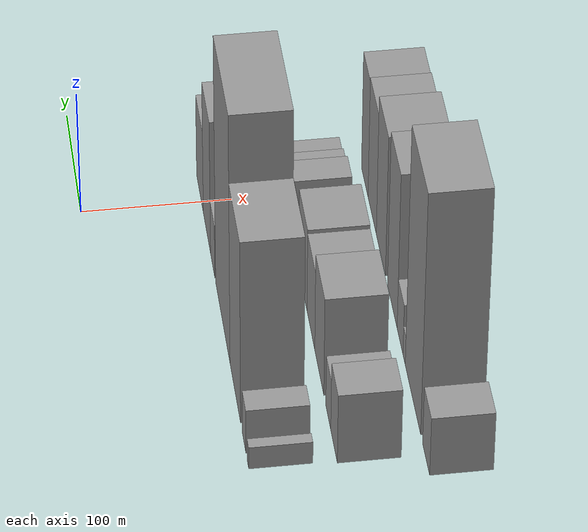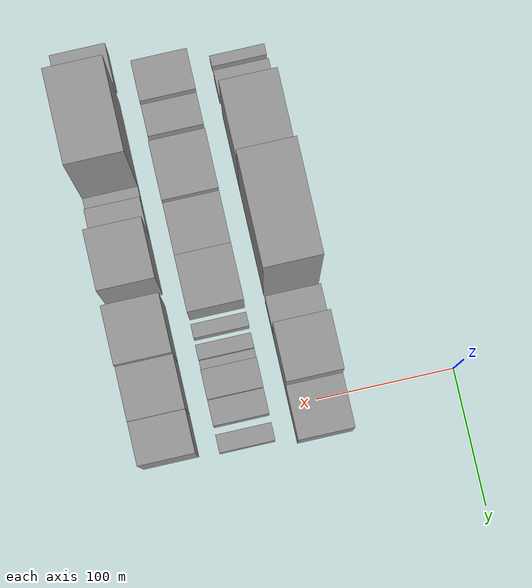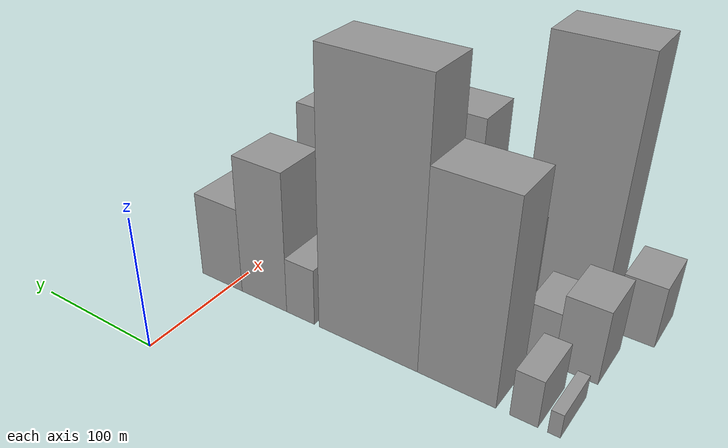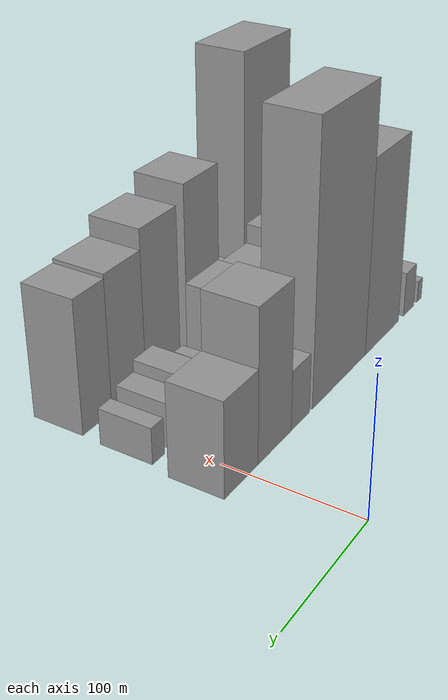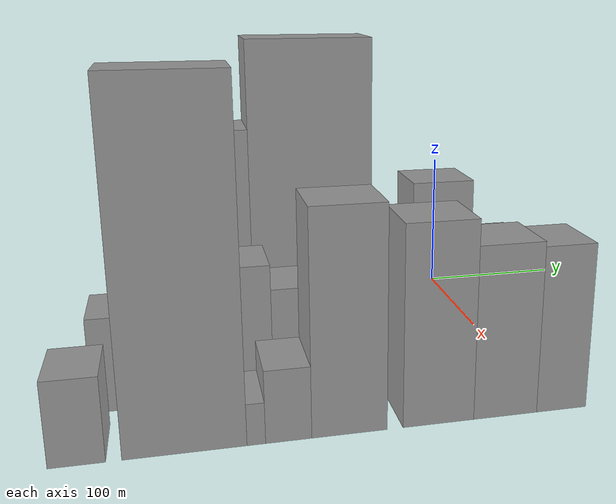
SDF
<sdf version="1.6">
 <world name="default">
  <model name="building_10">
   <static>1</static>
   <pose>100.0000 -250.5992 0 0.000000 0.000000 0.000000</pose>
   <link name="link">
    <pose>0 0 9.00 0 0 0</pose>
    <collision name="collision"><geometry><box><size>40.0000 8.0627 18.0000</size></box></geometry></collision>
    <visual name="visual">
     <cast_shadows>0</cast_shadows>
     <geometry><box><size>40.0000 8.0627 18.0000</size></box></geometry>
     <material>
      <script>
       <uri>model://grey_wall/materials/scripts</uri>
       <uri>model://grey_wall/materials/textures</uri>
       <name>vrc/grey_wall</name>
      </script>
     </material>
    </visual>
   </link>
  </model>
  <model name="building_11">
   <static>1</static>
   <pose>100.0000 -231.4067 0 0.000000 0.000000 0.000000</pose>
   <link name="link">
    <pose>0 0 18.00 0 0 0</pose>
    <collision name="collision"><geometry><box><size>40.0000 18.3222 36.0000</size></box></geometry></collision>
    <visual name="visual">
     <cast_shadows>0</cast_shadows>
     <geometry><box><size>40.0000 18.3222 36.0000</size></box></geometry>
     <material>
      <script>
       <uri>model://grey_wall/materials/scripts</uri>
       <uri>model://grey_wall/materials/textures</uri>
       <name>vrc/grey_wall</name>
      </script>
     </material>
    </visual>
   </link>
  </model>
  <model name="building_12">
   <static>1</static>
   <pose>100.0000 -185.6500 0 0.000000 0.000000 0.000000</pose>
   <link name="link">
    <pose>0 0 75.00 0 0 0</pose>
    <collision name="collision"><geometry><box><size>40.0000 55.1913 150.0000</size></box></geometry></collision>
    <visual name="visual">
     <cast_shadows>0</cast_shadows>
     <geometry><box><size>40.0000 55.1913 150.0000</size></box></geometry>
     <material>
      <script>
       <uri>model://grey_wall/materials/scripts</uri>
       <uri>model://grey_wall/materials/textures</uri>
       <name>vrc/grey_wall</name>
      </script>
     </material>
    </visual>
   </link>
  </model>
  <model name="building_13">
   <static>1</static>
   <pose>100.0000 -119.1153 0 0.000000 0.000000 0.000000</pose>
   <link name="link">
    <pose>0 0 102.00 0 0 0</pose>
    <collision name="collision"><geometry><box><size>40.0000 77.8781 204.0000</size></box></geometry></collision>
    <visual name="visual">
     <cast_shadows>0</cast_shadows>
     <geometry><box><size>40.0000 77.8781 204.0000</size></box></geometry>
     <material>
      <script>
       <uri>model://grey_wall/materials/scripts</uri>
       <uri>model://grey_wall/materials/textures</uri>
       <name>vrc/grey_wall</name>
      </script>
     </material>
    </visual>
   </link>
  </model>
  <model name="building_14">
   <static>1</static>
   <pose>100.0000 -64.1323 0 0.000000 0.000000 0.000000</pose>
   <link name="link">
    <pose>0 0 22.50 0 0 0</pose>
    <collision name="collision"><geometry><box><size>40.0000 24.0878 45.0000</size></box></geometry></collision>
    <visual name="visual">
     <cast_shadows>0</cast_shadows>
     <geometry><box><size>40.0000 24.0878 45.0000</size></box></geometry>
     <material>
      <script>
       <uri>model://grey_wall/materials/scripts</uri>
       <uri>model://grey_wall/materials/textures</uri>
       <name>vrc/grey_wall</name>
      </script>
     </material>
    </visual>
   </link>
  </model>
  <model name="building_15">
   <static>1</static>
   <pose>100.0000 -31.6384 0 0.000000 0.000000 0.000000</pose>
   <link name="link">
    <pose>0 0 55.50 0 0 0</pose>
    <collision name="collision"><geometry><box><size>40.0000 40.9000 111.0000</size></box></geometry></collision>
    <visual name="visual">
     <cast_shadows>0</cast_shadows>
     <geometry><box><size>40.0000 40.9000 111.0000</size></box></geometry>
     <material>
      <script>
       <uri>model://grey_wall/materials/scripts</uri>
       <uri>model://grey_wall/materials/textures</uri>
       <name>vrc/grey_wall</name>
      </script>
     </material>
    </visual>
   </link>
  </model>
  <model name="building_16">
   <static>1</static>
   <pose>100.0000 8.0737 0 0.000000 0.000000 0.000000</pose>
   <link name="link">
    <pose>0 0 34.50 0 0 0</pose>
    <collision name="collision"><geometry><box><size>40.0000 38.5243 69.0000</size></box></geometry></collision>
    <visual name="visual">
     <cast_shadows>0</cast_shadows>
     <geometry><box><size>40.0000 38.5243 69.0000</size></box></geometry>
     <material>
      <script>
       <uri>model://grey_wall/materials/scripts</uri>
       <uri>model://grey_wall/materials/textures</uri>
       <name>vrc/grey_wall</name>
      </script>
     </material>
    </visual>
   </link>
  </model>
  <model name="building_43">
   <static>1</static>
   <pose>155.0000 -241.7620 0 0.000000 0.000000 0.000000</pose>
   <link name="link">
    <pose>0 0 28.50 0 0 0</pose>
    <collision name="collision"><geometry><box><size>40.0000 29.3291 57.0000</size></box></geometry></collision>
    <visual name="visual">
     <cast_shadows>0</cast_shadows>
     <geometry><box><size>40.0000 29.3291 57.0000</size></box></geometry>
     <material>
      <script>
       <uri>model://grey_wall/materials/scripts</uri>
       <uri>model://grey_wall/materials/textures</uri>
       <name>vrc/grey_wall</name>
      </script>
     </material>
    </visual>
   </link>
  </model>
  <model name="building_44">
   <static>1</static>
   <pose>155.0000 -215.5495 0 0.000000 0.000000 0.000000</pose>
   <link name="link">
    <pose>0 0 21.00 0 0 0</pose>
    <collision name="collision"><geometry><box><size>40.0000 23.0959 42.0000</size></box></geometry></collision>
    <visual name="visual">
     <cast_shadows>0</cast_shadows>
     <geometry><box><size>40.0000 23.0959 42.0000</size></box></geometry>
     <material>
      <script>
       <uri>model://grey_wall/materials/scripts</uri>
       <uri>model://grey_wall/materials/textures</uri>
       <name>vrc/grey_wall</name>
      </script>
     </material>
    </visual>
   </link>
  </model>
  <model name="building_45">
   <static>1</static>
   <pose>155.0000 -173.9169 0 0.000000 0.000000 0.000000</pose>
   <link name="link">
    <pose>0 0 40.50 0 0 0</pose>
    <collision name="collision"><geometry><box><size>40.0000 42.1693 81.0000</size></box></geometry></collision>
    <visual name="visual">
     <cast_shadows>0</cast_shadows>
     <geometry><box><size>40.0000 42.1693 81.0000</size></box></geometry>
     <material>
      <script>
       <uri>model://grey_wall/materials/scripts</uri>
       <uri>model://grey_wall/materials/textures</uri>
       <name>vrc/grey_wall</name>
      </script>
     </material>
    </visual>
   </link>
  </model>
  <model name="building_46">
   <static>1</static>
   <pose>155.0000 -134.1837 0 0.000000 0.000000 0.000000</pose>
   <link name="link">
    <pose>0 0 33.00 0 0 0</pose>
    <collision name="collision"><geometry><box><size>40.0000 37.2972 66.0000</size></box></geometry></collision>
    <visual name="visual">
     <cast_shadows>0</cast_shadows>
     <geometry><box><size>40.0000 37.2972 66.0000</size></box></geometry>
     <material>
      <script>
       <uri>model://grey_wall/materials/scripts</uri>
       <uri>model://grey_wall/materials/textures</uri>
       <name>vrc/grey_wall</name>
      </script>
     </material>
    </visual>
   </link>
  </model>
  <model name="building_47">
   <static>1</static>
   <pose>155.0000 -95.3293 0 0.000000 0.000000 0.000000</pose>
   <link name="link">
    <pose>0 0 34.50 0 0 0</pose>
    <collision name="collision"><geometry><box><size>40.0000 40.4116 69.0000</size></box></geometry></collision>
    <visual name="visual">
     <cast_shadows>0</cast_shadows>
     <geometry><box><size>40.0000 40.4116 69.0000</size></box></geometry>
     <material>
      <script>
       <uri>model://grey_wall/materials/scripts</uri>
       <uri>model://grey_wall/materials/textures</uri>
       <name>vrc/grey_wall</name>
      </script>
     </material>
    </visual>
   </link>
  </model>
  <model name="building_48">
   <static>1</static>
   <pose>155.0000 -65.0605 0 0.000000 0.000000 0.000000</pose>
   <link name="link">
    <pose>0 0 12.00 0 0 0</pose>
    <collision name="collision"><geometry><box><size>40.0000 10.1261 24.0000</size></box></geometry></collision>
    <visual name="visual">
     <cast_shadows>0</cast_shadows>
     <geometry><box><size>40.0000 10.1261 24.0000</size></box></geometry>
     <material>
      <script>
       <uri>model://grey_wall/materials/scripts</uri>
       <uri>model://grey_wall/materials/textures</uri>
       <name>vrc/grey_wall</name>
      </script>
     </material>
    </visual>
   </link>
  </model>
  <model name="building_49">
   <static>1</static>
   <pose>155.0000 -49.5708 0 0.000000 0.000000 0.000000</pose>
   <link name="link">
    <pose>0 0 13.50 0 0 0</pose>
    <collision name="collision"><geometry><box><size>40.0000 10.8533 27.0000</size></box></geometry></collision>
    <visual name="visual">
     <cast_shadows>0</cast_shadows>
     <geometry><box><size>40.0000 10.8533 27.0000</size></box></geometry>
     <material>
      <script>
       <uri>model://grey_wall/materials/scripts</uri>
       <uri>model://grey_wall/materials/textures</uri>
       <name>vrc/grey_wall</name>
      </script>
     </material>
    </visual>
   </link>
  </model>
  <model name="building_50">
   <static>1</static>
   <pose>155.0000 -40.2125 0 0.000000 0.000000 0.000000</pose>
   <link name="link">
    <pose>0 0 9.00 0 0 0</pose>
    <collision name="collision"><geometry><box><size>40.0000 7.8632 18.0000</size></box></geometry></collision>
    <visual name="visual">
     <cast_shadows>0</cast_shadows>
     <geometry><box><size>40.0000 7.8632 18.0000</size></box></geometry>
     <material>
      <script>
       <uri>model://grey_wall/materials/scripts</uri>
       <uri>model://grey_wall/materials/textures</uri>
       <name>vrc/grey_wall</name>
      </script>
     </material>
    </visual>
   </link>
  </model>
  <model name="building_51">
   <static>1</static>
   <pose>155.0000 -25.5959 0 0.000000 0.000000 0.000000</pose>
   <link name="link">
    <pose>0 0 21.00 0 0 0</pose>
    <collision name="collision"><geometry><box><size>40.0000 21.3701 42.0000</size></box></geometry></collision>
    <visual name="visual">
     <cast_shadows>0</cast_shadows>
     <geometry><box><size>40.0000 21.3701 42.0000</size></box></geometry>
     <material>
      <script>
       <uri>model://grey_wall/materials/scripts</uri>
       <uri>model://grey_wall/materials/textures</uri>
       <name>vrc/grey_wall</name>
      </script>
     </material>
    </visual>
   </link>
  </model>
  <model name="building_52">
   <static>1</static>
   <pose>155.0000 -5.6852 0 0.000000 0.000000 0.000000</pose>
   <link name="link">
    <pose>0 0 16.50 0 0 0</pose>
    <collision name="collision"><geometry><box><size>40.0000 18.4512 33.0000</size></box></geometry></collision>
    <visual name="visual">
     <cast_shadows>0</cast_shadows>
     <geometry><box><size>40.0000 18.4512 33.0000</size></box></geometry>
     <material>
      <script>
       <uri>model://grey_wall/materials/scripts</uri>
       <uri>model://grey_wall/materials/textures</uri>
       <name>vrc/grey_wall</name>
      </script>
     </material>
    </visual>
   </link>
  </model>
  <model name="building_53">
   <static>1</static>
   <pose>155.0000 16.0391 0 0.000000 0.000000 0.000000</pose>
   <link name="link">
    <pose>0 0 13.50 0 0 0</pose>
    <collision name="collision"><geometry><box><size>40.0000 12.9974 27.0000</size></box></geometry></collision>
    <visual name="visual">
     <cast_shadows>0</cast_shadows>
     <geometry><box><size>40.0000 12.9974 27.0000</size></box></geometry>
     <material>
      <script>
       <uri>model://grey_wall/materials/scripts</uri>
       <uri>model://grey_wall/materials/textures</uri>
       <name>vrc/grey_wall</name>
      </script>
     </material>
    </visual>
   </link>
  </model>
  <model name="building_81">
   <static>1</static>
   <pose>210.0000 -260.1177 0 0.000000 0.000000 0.000000</pose>
   <link name="link">
    <pose>0 0 24.00 0 0 0</pose>
    <collision name="collision"><geometry><box><size>40.0000 28.4366 48.0000</size></box></geometry></collision>
    <visual name="visual">
     <cast_shadows>0</cast_shadows>
     <geometry><box><size>40.0000 28.4366 48.0000</size></box></geometry>
     <material>
      <script>
       <uri>model://grey_wall/materials/scripts</uri>
       <uri>model://grey_wall/materials/textures</uri>
       <name>vrc/grey_wall</name>
      </script>
     </material>
    </visual>
   </link>
  </model>
  <model name="building_82">
   <static>1</static>
   <pose>210.0000 -205.8589 0 0.000000 0.000000 0.000000</pose>
   <link name="link">
    <pose>0 0 99.00 0 0 0</pose>
    <collision name="collision"><geometry><box><size>40.0000 64.0809 198.0000</size></box></geometry></collision>
    <visual name="visual">
     <cast_shadows>0</cast_shadows>
     <geometry><box><size>40.0000 64.0809 198.0000</size></box></geometry>
     <material>
      <script>
       <uri>model://grey_wall/materials/scripts</uri>
       <uri>model://grey_wall/materials/textures</uri>
       <name>vrc/grey_wall</name>
      </script>
     </material>
    </visual>
   </link>
  </model>
  <model name="building_83">
   <static>1</static>
   <pose>210.0000 -168.8874 0 0.000000 0.000000 0.000000</pose>
   <link name="link">
    <pose>0 0 12.00 0 0 0</pose>
    <collision name="collision"><geometry><box><size>40.0000 9.8622 24.0000</size></box></geometry></collision>
    <visual name="visual">
     <cast_shadows>0</cast_shadows>
     <geometry><box><size>40.0000 9.8622 24.0000</size></box></geometry>
     <material>
      <script>
       <uri>model://grey_wall/materials/scripts</uri>
       <uri>model://grey_wall/materials/textures</uri>
       <name>vrc/grey_wall</name>
      </script>
     </material>
    </visual>
   </link>
  </model>
  <model name="building_84">
   <static>1</static>
   <pose>210.0000 -151.5203 0 0.000000 0.000000 0.000000</pose>
   <link name="link">
    <pose>0 0 21.00 0 0 0</pose>
    <collision name="collision"><geometry><box><size>40.0000 24.8719 42.0000</size></box></geometry></collision>
    <visual name="visual">
     <cast_shadows>0</cast_shadows>
     <geometry><box><size>40.0000 24.8719 42.0000</size></box></geometry>
     <material>
      <script>
       <uri>model://grey_wall/materials/scripts</uri>
       <uri>model://grey_wall/materials/textures</uri>
       <name>vrc/grey_wall</name>
      </script>
     </material>
    </visual>
   </link>
  </model>
  <model name="building_85">
   <static>1</static>
   <pose>210.0000 -118.1208 0 0.000000 0.000000 0.000000</pose>
   <link name="link">
    <pose>0 0 64.50 0 0 0</pose>
    <collision name="collision"><geometry><box><size>40.0000 41.9269 129.0000</size></box></geometry></collision>
    <visual name="visual">
     <cast_shadows>0</cast_shadows>
     <geometry><box><size>40.0000 41.9269 129.0000</size></box></geometry>
     <material>
      <script>
       <uri>model://grey_wall/materials/scripts</uri>
       <uri>model://grey_wall/materials/textures</uri>
       <name>vrc/grey_wall</name>
      </script>
     </material>
    </visual>
   </link>
  </model>
  <model name="building_86">
   <static>1</static>
   <pose>210.0000 -67.6298 0 0.000000 0.000000 0.000000</pose>
   <link name="link">
    <pose>0 0 58.50 0 0 0</pose>
    <collision name="collision"><geometry><box><size>40.0000 41.0551 117.0000</size></box></geometry></collision>
    <visual name="visual">
     <cast_shadows>0</cast_shadows>
     <geometry><box><size>40.0000 41.0551 117.0000</size></box></geometry>
     <material>
      <script>
       <uri>model://grey_wall/materials/scripts</uri>
       <uri>model://grey_wall/materials/textures</uri>
       <name>vrc/grey_wall</name>
      </script>
     </material>
    </visual>
   </link>
  </model>
  <model name="building_87">
   <static>1</static>
   <pose>210.0000 -28.1743 0 0.000000 0.000000 0.000000</pose>
   <link name="link">
    <pose>0 0 51.00 0 0 0</pose>
    <collision name="collision"><geometry><box><size>40.0000 37.8560 102.0000</size></box></geometry></collision>
    <visual name="visual">
     <cast_shadows>0</cast_shadows>
     <geometry><box><size>40.0000 37.8560 102.0000</size></box></geometry>
     <material>
      <script>
       <uri>model://grey_wall/materials/scripts</uri>
       <uri>model://grey_wall/materials/textures</uri>
       <name>vrc/grey_wall</name>
      </script>
     </material>
    </visual>
   </link>
  </model>
  <model name="building_88">
   <static>1</static>
   <pose>210.0000 5.9602 0 0.000000 0.000000 0.000000</pose>
   <link name="link">
    <pose>0 0 49.50 0 0 0</pose>
    <collision name="collision"><geometry><box><size>40.0000 30.4130 99.0000</size></box></geometry></collision>
    <visual name="visual">
     <cast_shadows>0</cast_shadows>
     <geometry><box><size>40.0000 30.4130 99.0000</size></box></geometry>
     <material>
      <script>
       <uri>model://grey_wall/materials/scripts</uri>
       <uri>model://grey_wall/materials/textures</uri>
       <name>vrc/grey_wall</name>
      </script>
     </material>
    </visual>
   </link>
  </model>
 </world>
</sdf>
